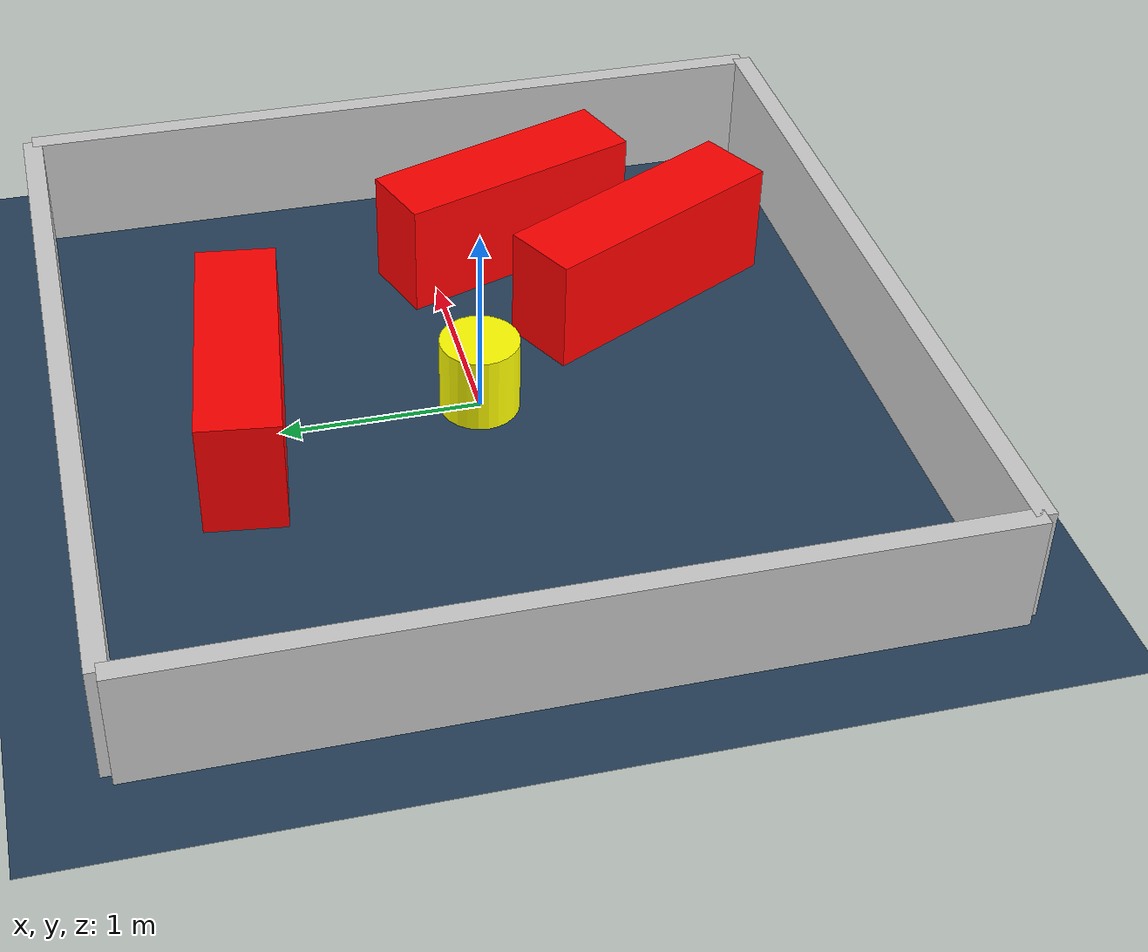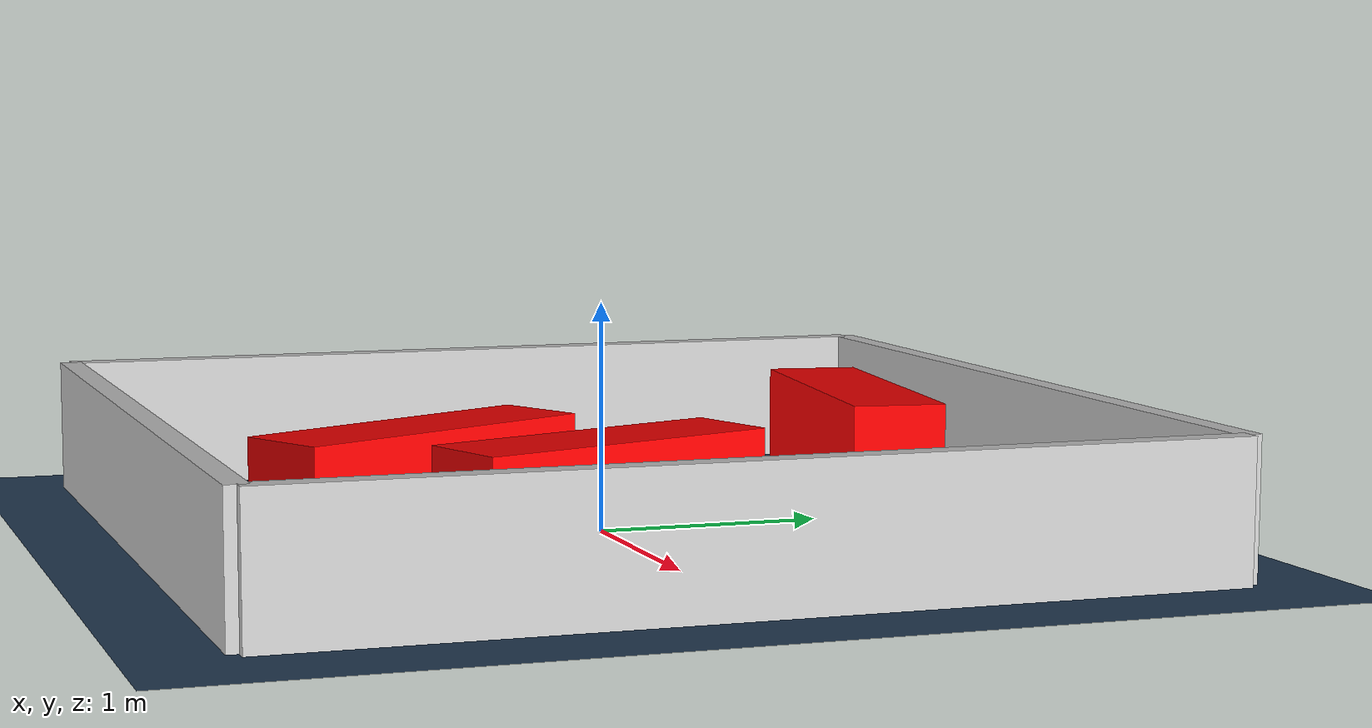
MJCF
<?xml version="1.0" ?>
<mujoco model="generated_environment">
  <option timestep="0.01" integrator="RK4" cone="elliptic"/>
  <default>
    <geom density="1"/>
  </default>
  <asset>
    <texture builtin="gradient" height="3072" rgb1="0.3 0.5 0.7" rgb2="0 0 0" type="skybox" width="512"/>
    <texture builtin="checker" height="300" mark="edge" markrgb="0.8 0.8 0.8" name="groundplane" rgb1="0.2 0.3 0.4" rgb2="0.1 0.2 0.3" type="2d" width="300"/>
    <material name="groundplane" reflectance="0.2" texrepeat="5 5" texture="groundplane" texuniform="true"/>
    <material name="robot" rgba="0.0 1.0 0.0 1"/>
  </asset>
  <worldbody>
    <light dir="0 0 -1" directional="true" pos="0 0 1.5"/>
    <geom condim="4" friction="1.0 0.005 0.001" material="groundplane" name="floor" size="0 0 0.05" type="plane"/>
    <body name="walls">
      <geom name="wall_1" condim="4" pos="-2.0 0.0 0.3" rgba="0.800000011920929 0.800000011920929 0.800000011920929 1.0" size="0.05 2.0 0.3" type="box"/>
      <geom name="wall_2" condim="4" pos="2.0 0.0 0.3" rgba="0.800000011920929 0.800000011920929 0.800000011920929 1.0" size="0.05 2.0 0.3" type="box"/>
      <geom name="wall_3" condim="4" pos="0.0 -2.0 0.3" rgba="0.800000011920929 0.800000011920929 0.800000011920929 1.0" size="2.0 0.05 0.3" type="box"/>
      <geom name="wall_4" condim="4" pos="0.0 2.0 0.3" rgba="0.800000011920929 0.800000011920929 0.800000011920929 1.0" size="2.0 0.05 0.3" type="box"/>
    </body>
    <body name="robot">
      <joint name="joint_x" type="slide" pos="0 0 0" axis="1 0 0"/>
      <joint name="joint_y" type="slide" pos="0 0 0" axis="0 1 0"/>
      <geom name="robot" type="sphere" pos="0.3 0.0 0.2" size="0.05" mass="5." friction="1.0 0.005 0.0001" condim="4" rgba="0.5 0.5 0.5 1.0"/>
      <site name="sensor_ball"/>
    </body>
    <body name="obstacle_movable_1">
      <geom name="obstacle_movable_1" condim="4" pos="0.0 0.0 0.2" euler="0 0 0.0" friction="1.0 0.005 0.001" rgba="1.0 1.0 0.0 1.0" size="0.2 0.2 0.0" type="cylinder" mass="0.1"/>
      <joint type="free"/>
    </body>
    <body name="obstacle_2_static">
      <geom name="obstacle_2_static" condim="4" pos="0.042694750583598395 1.1691133829665656 0.3" euler="0 0 172.60910319168977" friction="1.0 0.005 0.001" rgba="1 0 0 1" size="0.7041019062324056 0.2 0.3" type="box"/>
    </body>
    <body name="obstacle_3_static">
      <geom name="obstacle_3_static" condim="4" pos="0.6950222025932988 -1.0132934827525535 0.3" euler="0 0 296.9220188325152" friction="1.0 0.005 0.001" rgba="1 0 0 1" size="0.6947419757672675 0.2 0.3" type="box"/>
    </body>
    <body name="obstacle_4_static">
      <geom name="obstacle_4_static" condim="4" pos="1.2530989183556196 -0.4170087711224457 0.3" euler="0 0 109.14256383533248" friction="1.0 0.005 0.001" rgba="1 0 0 1" size="0.6625164878490635 0.2 0.3" type="box"/>
    </body>
  </worldbody>
  <actuator>
    <motor name="actuator_x" joint="joint_x" gear="1" ctrlrange="-1 1"/>
    <motor name="actuator_y" joint="joint_y" gear="1" ctrlrange="-1 1"/>
  </actuator>
</mujoco>
